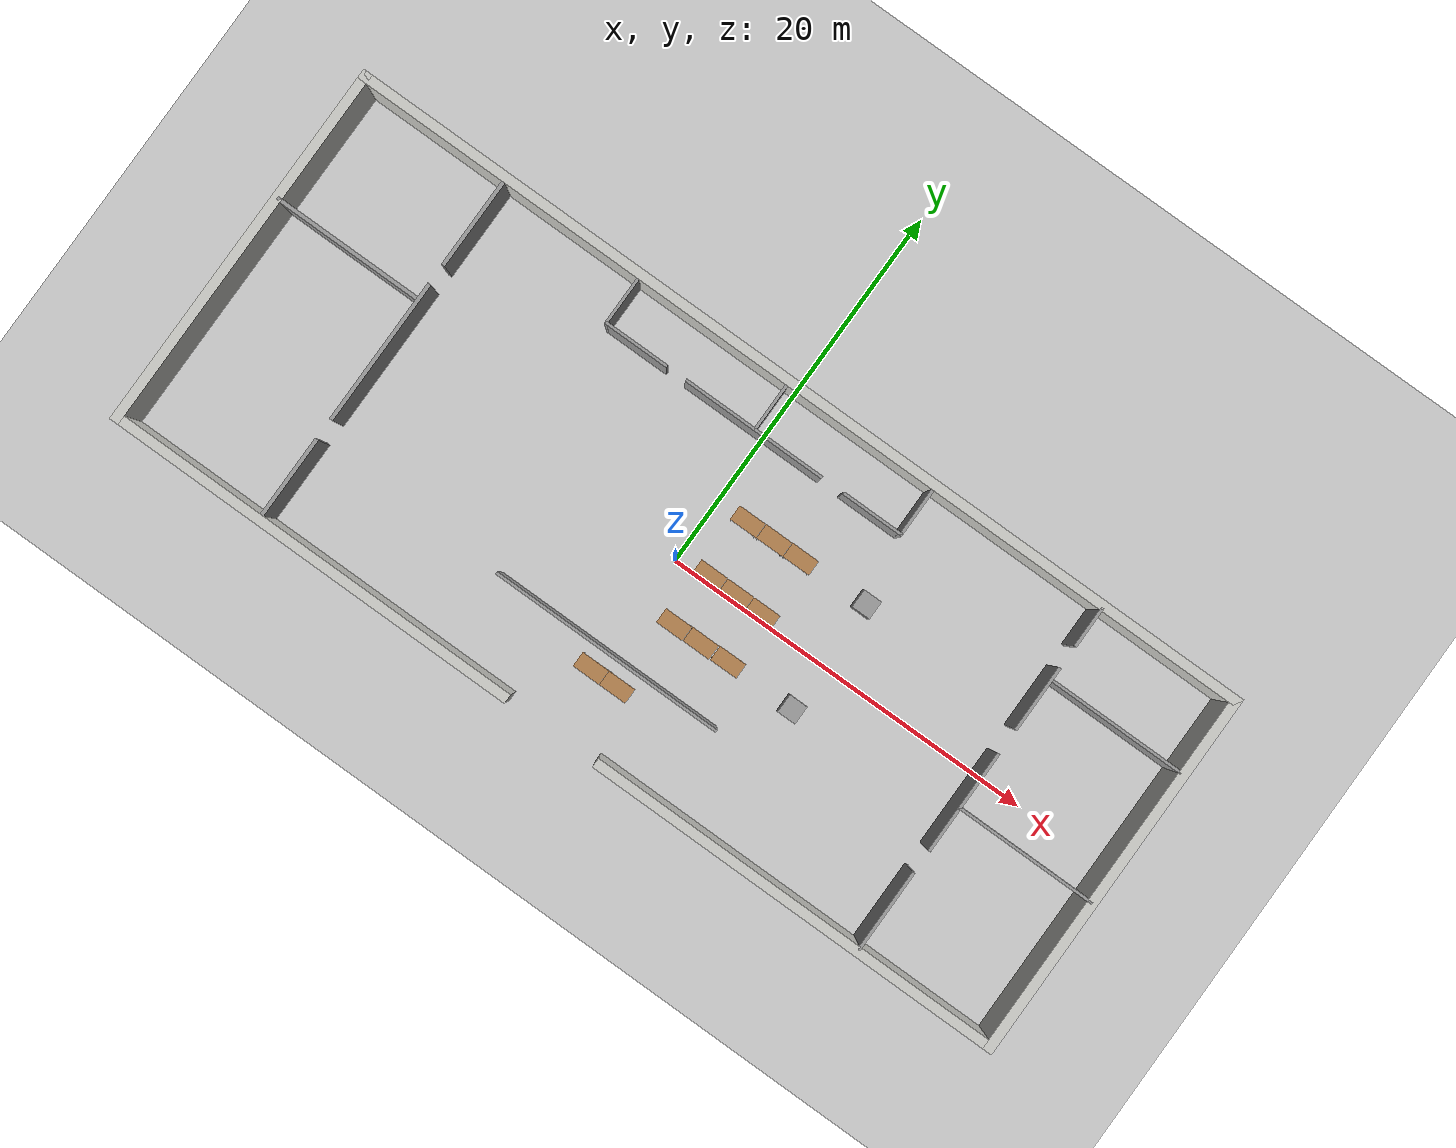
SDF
<sdf version="1.6">
 <world name="default">
  <model name="ground_plane">
   <static>1</static>
   <link name="link">
    <collision name="collision">
     <geometry><plane><normal>0 0 1</normal><size>100 100</size></plane></geometry>
     <surface><friction><ode><mu>100</mu><mu2>50</mu2></ode></friction></surface>
    </collision>
    <visual name="visual">
     <cast_shadows>0</cast_shadows>
     <geometry><plane><normal>0 0 1</normal><size>100 100</size></plane></geometry>
     <material>
      <script><uri>file://media/materials/scripts/gazebo.material</uri><name>Gazebo/Grey</name></script>
     </material>
    </visual>
   </link>
  </model>
  <model name="indemind_office">
   <pose>-0.031352 0.007006 0 0 -0 0</pose>
   <link name="Wall_1">
    <collision name="Wall_1_Collision">
     <geometry><box><size>20 0.5 2.5</size></box></geometry>
     <pose>0 0 1.25 0 -0 0</pose>
    </collision>
    <visual name="Wall_1_Visual">
     <pose>0 0 1.25 0 -0 0</pose>
     <geometry><box><size>20 0.5 2.5</size></box></geometry>
     <material>
      <script><uri>file://media/materials/scripts/gazebo.material</uri><name>Gazebo/CeilingTiled</name></script>
      <ambient>1 1 1 1</ambient>
     </material>
     <meta><layer>0</layer></meta>
    </visual>
    <pose>-24.75 -0 0 0 -0 -1.5708</pose>
   </link>
   <link name="Wall_11">
    <collision name="Wall_11_Collision">
     <geometry><box><size>20 0.5 2.5</size></box></geometry>
     <pose>0 0 1.25 0 -0 0</pose>
    </collision>
    <visual name="Wall_11_Visual">
     <pose>0 0 1.25 0 -0 0</pose>
     <geometry><box><size>20 0.5 2.5</size></box></geometry>
     <material>
      <script><uri>file://media/materials/scripts/gazebo.material</uri><name>Gazebo/CeilingTiled</name></script>
      <ambient>1 1 1 1</ambient>
     </material>
     <meta><layer>0</layer></meta>
    </visual>
    <pose>24.75 -0 0 0 -0 -1.5708</pose>
   </link>
   <link name="Wall_13">
    <collision name="Wall_13_Collision">
     <geometry><box><size>4.80017 0.2 2.5</size></box></geometry>
     <pose>0 0 1.25 0 -0 0</pose>
    </collision>
    <visual name="Wall_13_Visual">
     <pose>0 0 1.25 0 -0 0</pose>
     <geometry><box><size>4.80017 0.2 2.5</size></box></geometry>
     <material>
      <script><uri>file://media/materials/scripts/gazebo.material</uri><name>Gazebo/Grey</name></script>
      <ambient>1 1 1 1</ambient>
     </material>
     <meta><layer>0</layer></meta>
    </visual>
    <pose>-16.658 7.127 0 0 -0 -1.5708</pose>
   </link>
   <link name="Wall_15">
    <collision name="Wall_15_Collision">
     <geometry><box><size>7.75 0.2 2.5</size></box></geometry>
     <pose>0 0 1.25 0 -0 0</pose>
    </collision>
    <visual name="Wall_15_Visual">
     <pose>0 0 1.25 0 -0 0</pose>
     <geometry><box><size>7.75 0.2 2.5</size></box></geometry>
     <material>
      <script><uri>file://media/materials/scripts/gazebo.material</uri><name>Gazebo/Grey</name></script>
      <ambient>1 1 1 1</ambient>
     </material>
     <meta><layer>0</layer></meta>
    </visual>
    <pose>-16.658 -0.198 0 0 -0 -1.5708</pose>
   </link>
   <link name="Wall_17">
    <collision name="Wall_17_Collision">
     <geometry><box><size>4.5 0.2 2.5</size></box></geometry>
     <pose>0 0 1.25 0 -0 0</pose>
    </collision>
    <visual name="Wall_17_Visual">
     <pose>0 0 1.25 0 -0 0</pose>
     <geometry><box><size>4.5 0.2 2.5</size></box></geometry>
     <material>
      <script><uri>file://media/materials/scripts/gazebo.material</uri><name>Gazebo/Grey</name></script>
      <ambient>1 1 1 1</ambient>
     </material>
     <meta><layer>0</layer></meta>
    </visual>
    <pose>-16.658 -7.423 0 0 -0 -1.5708</pose>
   </link>
   <link name="Wall_19">
    <collision name="Wall_19_Collision">
     <geometry><box><size>8.04985 0.2 2.5</size></box></geometry>
     <pose>0 0 1.25 0 -0 0</pose>
    </collision>
    <visual name="Wall_19_Visual">
     <pose>0 0 1.25 0 -0 0</pose>
     <geometry><box><size>8.04985 0.2 2.5</size></box></geometry>
     <material>
      <script><uri>file://media/materials/scripts/gazebo.material</uri><name>Gazebo/Grey</name></script>
      <ambient>1 1 1 1</ambient>
     </material>
     <meta><layer>0</layer></meta>
    </visual>
    <pose>-20.703 2.792 0 0 -0 0</pose>
   </link>
   <link name="Wall_21">
    <collision name="Wall_21_Collision">
     <geometry><box><size>2.25 0.15 2.5</size></box></geometry>
     <pose>0 0 1.25 0 -0 0</pose>
    </collision>
    <visual name="Wall_21_Visual">
     <pose>0 0 1.25 0 -0 0</pose>
     <geometry><box><size>2.25 0.15 2.5</size></box></geometry>
     <material>
      <script><uri>file://media/materials/scripts/gazebo.material</uri><name>Gazebo/Grey</name></script>
      <ambient>1 1 1 1</ambient>
     </material>
     <meta><layer>0</layer></meta>
    </visual>
    <pose>17.2839 8.57905 0 0 -0 -1.57072</pose>
   </link>
   <link name="Wall_23">
    <collision name="Wall_23_Collision">
     <geometry><box><size>3.5 0.15 2.5</size></box></geometry>
     <pose>0 0 1.25 0 -0 0</pose>
    </collision>
    <visual name="Wall_23_Visual">
     <pose>0 0 1.25 0 -0 0</pose>
     <geometry><box><size>3.5 0.15 2.5</size></box></geometry>
     <material>
      <script><uri>file://media/materials/scripts/gazebo.material</uri><name>Gazebo/Grey</name></script>
      <ambient>1 1 1 1</ambient>
     </material>
     <meta><layer>0</layer></meta>
    </visual>
    <pose>17.2838 4.5041 0 0 -0 -1.5708</pose>
   </link>
   <link name="Wall_25">
    <collision name="Wall_25_Collision">
     <geometry><box><size>5.5 0.15 2.5</size></box></geometry>
     <pose>0 0 1.25 0 -0 0</pose>
    </collision>
    <visual name="Wall_25_Visual">
     <pose>0 0 1.25 0 -0 0</pose>
     <geometry><box><size>5.5 0.15 2.5</size></box></geometry>
     <material>
      <script><uri>file://media/materials/scripts/gazebo.material</uri><name>Gazebo/Grey</name></script>
      <ambient>1 1 1 1</ambient>
     </material>
     <meta><layer>0</layer></meta>
    </visual>
    <pose>17.2838 -1.3459 0 0 -0 -1.5708</pose>
   </link>
   <link name="Wall_27">
    <collision name="Wall_27_Collision">
     <geometry><box><size>4.35 0.15 2.5</size></box></geometry>
     <pose>0 0 1.25 0 -0 0</pose>
    </collision>
    <visual name="Wall_27_Visual">
     <pose>0 0 1.25 0 -0 0</pose>
     <geometry><box><size>4.35 0.15 2.5</size></box></geometry>
     <material>
      <script><uri>file://media/materials/scripts/gazebo.material</uri><name>Gazebo/Grey</name></script>
      <ambient>1 1 1 1</ambient>
     </material>
     <meta><layer>0</layer></meta>
    </visual>
    <pose>17.2838 -7.4709 0 0 -0 -1.5708</pose>
   </link>
   <link name="Wall_29">
    <collision name="Wall_29_Collision">
     <geometry><box><size>7.5 0.15 2.5</size></box></geometry>
     <pose>0 0 1.25 0 -0 0</pose>
    </collision>
    <visual name="Wall_29_Visual">
     <pose>0 0 1.25 0 -0 0</pose>
     <geometry><box><size>7.5 0.15 2.5</size></box></geometry>
     <material>
      <script><uri>file://media/materials/scripts/gazebo.material</uri><name>Gazebo/Grey</name></script>
      <ambient>1 1 1 1</ambient>
     </material>
     <meta><layer>0</layer></meta>
    </visual>
    <pose>20.9993 5.58355 0 0 -0 0</pose>
   </link>
   <link name="Wall_3">
    <collision name="Wall_3_Collision">
     <geometry><box><size>50 0.5 2.5</size></box></geometry>
     <pose>0 0 1.25 0 -0 0</pose>
    </collision>
    <visual name="Wall_3_Visual">
     <pose>0 0 1.25 0 -0 0</pose>
     <geometry><box><size>50 0.5 2.5</size></box></geometry>
     <material>
      <script><uri>file://media/materials/scripts/gazebo.material</uri><name>Gazebo/CeilingTiled</name></script>
      <ambient>1 1 1 1</ambient>
     </material>
     <meta><layer>0</layer></meta>
    </visual>
    <pose>-1e-06 9.75 0 0 -0 0</pose>
   </link>
   <link name="Wall_31">
    <collision name="Wall_31_Collision">
     <geometry><box><size>7.5 0.15 2.5</size></box></geometry>
     <pose>0 0 1.25 0 -0 0</pose>
    </collision>
    <visual name="Wall_31_Visual">
     <pose>0 0 1.25 0 -0 0</pose>
     <geometry><box><size>7.5 0.15 2.5</size></box></geometry>
     <material>
      <script><uri>file://media/materials/scripts/gazebo.material</uri><name>Gazebo/Grey</name></script>
      <ambient>1 1 1 1</ambient>
     </material>
     <meta><layer>0</layer></meta>
    </visual>
    <pose>20.9993 -1.658 0 0 -0 0</pose>
   </link>
   <link name="Wall_34">
    <collision name="Wall_34_Collision">
     <geometry><box><size>2.75032 0.15 2.5</size></box></geometry>
     <pose>0 0 1.25 0 -0 0</pose>
    </collision>
    <visual name="Wall_34_Visual">
     <pose>0 0 1.25 0 -0 0</pose>
     <geometry><box><size>2.75032 0.15 2.5</size></box></geometry>
     <material>
      <script><uri>file://media/materials/scripts/gazebo.material</uri><name>Gazebo/Grey</name></script>
      <ambient>1 1 1 1</ambient>
     </material>
     <meta><layer>0</layer></meta>
    </visual>
    <pose>-8.97184 8.28865 0 0 -0 -1.5708</pose>
   </link>
   <link name="Wall_35">
    <collision name="Wall_35_Collision">
     <geometry><box><size>3.5 0.15 2.5</size></box></geometry>
     <pose>0 0 1.25 0 -0 0</pose>
    </collision>
    <visual name="Wall_35_Visual">
     <pose>0 0 1.25 0 -0 0</pose>
     <geometry><box><size>3.5 0.15 2.5</size></box></geometry>
     <material>
      <script><uri>file://media/materials/scripts/gazebo.material</uri><name>Gazebo/Grey</name></script>
      <ambient>1 1 1 1</ambient>
     </material>
     <meta><layer>0</layer></meta>
    </visual>
    <pose>-7.25638 6.98865 0 0 -0 0</pose>
   </link>
   <link name="Wall_37">
    <collision name="Wall_37_Collision">
     <geometry><box><size>7.75 0.15 2.5</size></box></geometry>
     <pose>0 0 1.25 0 -0 0</pose>
    </collision>
    <visual name="Wall_37_Visual">
     <pose>0 0 1.25 0 -0 0</pose>
     <geometry><box><size>7.75 0.15 2.5</size></box></geometry>
     <material>
      <script><uri>file://media/materials/scripts/gazebo.material</uri><name>Gazebo/Grey</name></script>
      <ambient>1 1 1 1</ambient>
     </material>
     <meta><layer>0</layer></meta>
    </visual>
    <pose>-0.572001 6.989 0 0 -0 0</pose>
   </link>
   <link name="Wall_39">
    <collision name="Wall_39_Collision">
     <geometry><box><size>3.35 0.15 2.5</size></box></geometry>
     <pose>0 0 1.25 0 -0 0</pose>
    </collision>
    <visual name="Wall_39_Visual">
     <pose>0 0 1.25 0 -0 0</pose>
     <geometry><box><size>3.35 0.15 2.5</size></box></geometry>
     <material>
      <script><uri>file://media/materials/scripts/gazebo.material</uri><name>Gazebo/Grey</name></script>
      <ambient>1 1 1 1</ambient>
     </material>
     <meta><layer>0</layer></meta>
    </visual>
    <pose>6.17808 6.98882 0 0 -0 -0.00011</pose>
   </link>
   <link name="Wall_40">
    <collision name="Wall_40_Collision">
     <geometry><box><size>2.75 0.15 2.5</size></box></geometry>
     <pose>0 0 1.25 0 -0 0</pose>
    </collision>
    <visual name="Wall_40_Visual">
     <pose>0 0 1.25 0 -0 0</pose>
     <geometry><box><size>2.75 0.15 2.5</size></box></geometry>
     <material>
      <script><uri>file://media/materials/scripts/gazebo.material</uri><name>Gazebo/Grey</name></script>
      <ambient>1 1 1 1</ambient>
     </material>
     <meta><layer>0</layer></meta>
    </visual>
    <pose>7.77816 8.28865 0 0 -0 1.5708</pose>
   </link>
   <link name="Wall_42">
    <collision name="Wall_42_Collision">
     <geometry><box><size>2.75 0.15 2.5</size></box></geometry>
     <pose>0 0 1.25 0 -0 0</pose>
    </collision>
    <visual name="Wall_42_Visual">
     <pose>0 0 1.25 0 -0 0</pose>
     <geometry><box><size>2.75 0.15 2.5</size></box></geometry>
     <material>
      <script><uri>file://media/materials/scripts/gazebo.material</uri><name>Gazebo/Grey</name></script>
      <ambient>1 1 1 1</ambient>
     </material>
     <meta><layer>0</layer></meta>
    </visual>
    <pose>-0.516625 8.36956 0 0 -0 -1.5708</pose>
   </link>
   <link name="Wall_44">
    <collision name="Wall_44_Collision">
     <geometry><box><size>12.5 0.15 2.5</size></box></geometry>
     <pose>0 0 1.25 0 -0 0</pose>
    </collision>
    <visual name="Wall_44_Visual">
     <pose>0 0 1.25 0 -0 0</pose>
     <geometry><box><size>12.5 0.15 2.5</size></box></geometry>
     <material>
      <script><uri>file://media/materials/scripts/gazebo.material</uri><name>Gazebo/Grey</name></script>
      <ambient>1 1 1 1</ambient>
     </material>
     <meta><layer>0</layer></meta>
    </visual>
    <pose>-0.086317 -5.33946 0 0 -0 0</pose>
   </link>
   <link name="Wall_7">
    <collision name="Wall_7_Collision">
     <geometry><box><size>22.5 0.5 2.5</size></box></geometry>
     <pose>0 0 1.25 0 -0 0</pose>
    </collision>
    <visual name="Wall_7_Visual">
     <pose>0 0 1.25 0 -0 0</pose>
     <geometry><box><size>22.5 0.5 2.5</size></box></geometry>
     <material>
      <script><uri>file://media/materials/scripts/gazebo.material</uri><name>Gazebo/CeilingTiled</name></script>
      <ambient>1 1 1 1</ambient>
     </material>
     <meta><layer>0</layer></meta>
    </visual>
    <pose>-13.75 -9.75 0 0 -0 0</pose>
   </link>
   <link name="Wall_9">
    <collision name="Wall_9_Collision">
     <geometry><box><size>22.5 0.5 2.5</size></box></geometry>
     <pose>0 0 1.25 0 -0 0</pose>
    </collision>
    <visual name="Wall_9_Visual">
     <pose>0 0 1.25 0 -0 0</pose>
     <geometry><box><size>22.5 0.5 2.5</size></box></geometry>
     <material>
      <script><uri>file://media/materials/scripts/gazebo.material</uri><name>Gazebo/CeilingTiled</name></script>
      <ambient>1 1 1 1</ambient>
     </material>
     <meta><layer>0</layer></meta>
    </visual>
    <pose>13.7296 -9.74954 0 0 -0 0</pose>
   </link>
   <static>1</static>
  </model>
  <model name="table_0">
   <static>1</static>
   <link name="link">
    <collision name="surface">
     <pose>0 0 1 0 -0 0</pose>
     <geometry><box><size>1.5 0.8 0.03</size></box></geometry>
     <surface><friction><ode><mu>0.6</mu><mu2>0.6</mu2></ode></friction></surface>
    </collision>
    <visual name="visual1">
     <pose>0 0 1 0 -0 0</pose>
     <geometry><box><size>1.5 0.8 0.03</size></box></geometry>
     <material>
      <script><uri>file://media/materials/scripts/gazebo.material</uri><name>Gazebo/Wood</name></script>
     </material>
    </visual>
    <collision name="front_left_leg">
     <pose>0.68 0.38 0.5 0 -0 0</pose>
     <geometry><cylinder><radius>0.02</radius><length>1</length></cylinder></geometry>
    </collision>
    <visual name="front_left_leg">
     <pose>0.68 0.38 0.5 0 -0 0</pose>
     <geometry><cylinder><radius>0.02</radius><length>1</length></cylinder></geometry>
     <material>
      <script><uri>file://media/materials/scripts/gazebo.material</uri><name>Gazebo/Grey</name></script>
     </material>
    </visual>
    <collision name="front_right_leg">
     <pose>0.68 -0.38 0.5 0 -0 0</pose>
     <geometry><cylinder><radius>0.02</radius><length>1</length></cylinder></geometry>
    </collision>
    <visual name="front_right_leg">
     <pose>0.68 -0.38 0.5 0 -0 0</pose>
     <geometry><cylinder><radius>0.02</radius><length>1</length></cylinder></geometry>
     <material>
      <script><uri>file://media/materials/scripts/gazebo.material</uri><name>Gazebo/Grey</name></script>
     </material>
    </visual>
    <collision name="back_right_leg">
     <pose>-0.68 -0.38 0.5 0 -0 0</pose>
     <geometry><cylinder><radius>0.02</radius><length>1</length></cylinder></geometry>
    </collision>
    <visual name="back_right_leg">
     <pose>-0.68 -0.38 0.5 0 -0 0</pose>
     <geometry><cylinder><radius>0.02</radius><length>1</length></cylinder></geometry>
     <material>
      <script><uri>file://media/materials/scripts/gazebo.material</uri><name>Gazebo/Grey</name></script>
     </material>
    </visual>
    <collision name="back_left_leg">
     <pose>-0.68 0.38 0.5 0 -0 0</pose>
     <geometry><cylinder><radius>0.02</radius><length>1</length></cylinder></geometry>
    </collision>
    <visual name="back_left_leg">
     <pose>-0.68 0.38 0.5 0 -0 0</pose>
     <geometry><cylinder><radius>0.02</radius><length>1</length></cylinder></geometry>
     <material>
      <script><uri>file://media/materials/scripts/gazebo.material</uri><name>Gazebo/Grey</name></script>
     </material>
    </visual>
   </link>
   <pose>-0.266949 -6.45533 0 0 -0 0</pose>
  </model>
  <model name="table_1">
   <static>1</static>
   <link name="link">
    <collision name="surface">
     <pose>0 0 1 0 -0 0</pose>
     <geometry><box><size>1.5 0.8 0.03</size></box></geometry>
     <surface><friction><ode><mu>0.6</mu><mu2>0.6</mu2></ode></friction></surface>
    </collision>
    <visual name="visual1">
     <pose>0 0 1 0 -0 0</pose>
     <geometry><box><size>1.5 0.8 0.03</size></box></geometry>
     <material>
      <script><uri>file://media/materials/scripts/gazebo.material</uri><name>Gazebo/Wood</name></script>
     </material>
    </visual>
    <collision name="front_left_leg">
     <pose>0.68 0.38 0.5 0 -0 0</pose>
     <geometry><cylinder><radius>0.02</radius><length>1</length></cylinder></geometry>
    </collision>
    <visual name="front_left_leg">
     <pose>0.68 0.38 0.5 0 -0 0</pose>
     <geometry><cylinder><radius>0.02</radius><length>1</length></cylinder></geometry>
     <material>
      <script><uri>file://media/materials/scripts/gazebo.material</uri><name>Gazebo/Grey</name></script>
     </material>
    </visual>
    <collision name="front_right_leg">
     <pose>0.68 -0.38 0.5 0 -0 0</pose>
     <geometry><cylinder><radius>0.02</radius><length>1</length></cylinder></geometry>
    </collision>
    <visual name="front_right_leg">
     <pose>0.68 -0.38 0.5 0 -0 0</pose>
     <geometry><cylinder><radius>0.02</radius><length>1</length></cylinder></geometry>
     <material>
      <script><uri>file://media/materials/scripts/gazebo.material</uri><name>Gazebo/Grey</name></script>
     </material>
    </visual>
    <collision name="back_right_leg">
     <pose>-0.68 -0.38 0.5 0 -0 0</pose>
     <geometry><cylinder><radius>0.02</radius><length>1</length></cylinder></geometry>
    </collision>
    <visual name="back_right_leg">
     <pose>-0.68 -0.38 0.5 0 -0 0</pose>
     <geometry><cylinder><radius>0.02</radius><length>1</length></cylinder></geometry>
     <material>
      <script><uri>file://media/materials/scripts/gazebo.material</uri><name>Gazebo/Grey</name></script>
     </material>
    </visual>
    <collision name="back_left_leg">
     <pose>-0.68 0.38 0.5 0 -0 0</pose>
     <geometry><cylinder><radius>0.02</radius><length>1</length></cylinder></geometry>
    </collision>
    <visual name="back_left_leg">
     <pose>-0.68 0.38 0.5 0 -0 0</pose>
     <geometry><cylinder><radius>0.02</radius><length>1</length></cylinder></geometry>
     <material>
      <script><uri>file://media/materials/scripts/gazebo.material</uri><name>Gazebo/Grey</name></script>
     </material>
    </visual>
   </link>
   <pose>1.24514 -6.45321 0 0 -0 0</pose>
  </model>
  <model name="unit_box_1">
   <pose>8.49375 3.54195 0.499995 -1e-05 -0 0</pose>
   <link name="link">
    <inertial>
     <mass>1</mass>
     <inertia>
      <ixx>0.166667</ixx>
      <ixy>0</ixy>
      <ixz>0</ixz>
      <iyy>0.166667</iyy>
      <iyz>0</iyz>
      <izz>0.166667</izz>
     </inertia>
    </inertial>
    <collision name="collision"><geometry><box><size>1 1 1</size></box></geometry></collision>
    <visual name="visual">
     <geometry><box><size>1 1 1</size></box></geometry>
     <material>
      <script><name>Gazebo/Grey</name><uri>file://media/materials/scripts/gazebo.material</uri></script>
     </material>
    </visual>
   </link>
  </model>
  <model name="unit_box_2">
   <pose>8.52634 -2.49408 0.5 0 -0 0</pose>
   <link name="link">
    <inertial>
     <mass>1</mass>
     <inertia>
      <ixx>0.166667</ixx>
      <ixy>0</ixy>
      <ixz>0</ixz>
      <iyy>0.166667</iyy>
      <iyz>0</iyz>
      <izz>0.166667</izz>
     </inertia>
    </inertial>
    <collision name="collision"><geometry><box><size>1 1 1</size></box></geometry></collision>
    <visual name="visual">
     <geometry><box><size>1 1 1</size></box></geometry>
     <material>
      <script><name>Gazebo/Grey</name><uri>file://media/materials/scripts/gazebo.material</uri></script>
     </material>
    </visual>
   </link>
  </model>
  <model name="table_6">
   <static>1</static>
   <link name="link">
    <collision name="surface">
     <pose>0 0 1 0 -0 0</pose>
     <geometry><box><size>1.5 0.8 0.03</size></box></geometry>
     <surface><friction><ode><mu>0.6</mu><mu2>0.6</mu2></ode></friction></surface>
    </collision>
    <visual name="visual1">
     <pose>0 0 1 0 -0 0</pose>
     <geometry><box><size>1.5 0.8 0.03</size></box></geometry>
     <material>
      <script><uri>file://media/materials/scripts/gazebo.material</uri><name>Gazebo/Wood</name></script>
     </material>
    </visual>
    <collision name="front_left_leg">
     <pose>0.68 0.38 0.5 0 -0 0</pose>
     <geometry><cylinder><radius>0.02</radius><length>1</length></cylinder></geometry>
    </collision>
    <visual name="front_left_leg">
     <pose>0.68 0.38 0.5 0 -0 0</pose>
     <geometry><cylinder><radius>0.02</radius><length>1</length></cylinder></geometry>
     <material>
      <script><uri>file://media/materials/scripts/gazebo.material</uri><name>Gazebo/Grey</name></script>
     </material>
    </visual>
    <collision name="front_right_leg">
     <pose>0.68 -0.38 0.5 0 -0 0</pose>
     <geometry><cylinder><radius>0.02</radius><length>1</length></cylinder></geometry>
    </collision>
    <visual name="front_right_leg">
     <pose>0.68 -0.38 0.5 0 -0 0</pose>
     <geometry><cylinder><radius>0.02</radius><length>1</length></cylinder></geometry>
     <material>
      <script><uri>file://media/materials/scripts/gazebo.material</uri><name>Gazebo/Grey</name></script>
     </material>
    </visual>
    <collision name="back_right_leg">
     <pose>-0.68 -0.38 0.5 0 -0 0</pose>
     <geometry><cylinder><radius>0.02</radius><length>1</length></cylinder></geometry>
    </collision>
    <visual name="back_right_leg">
     <pose>-0.68 -0.38 0.5 0 -0 0</pose>
     <geometry><cylinder><radius>0.02</radius><length>1</length></cylinder></geometry>
     <material>
      <script><uri>file://media/materials/scripts/gazebo.material</uri><name>Gazebo/Grey</name></script>
     </material>
    </visual>
    <collision name="back_left_leg">
     <pose>-0.68 0.38 0.5 0 -0 0</pose>
     <geometry><cylinder><radius>0.02</radius><length>1</length></cylinder></geometry>
    </collision>
    <visual name="back_left_leg">
     <pose>-0.68 0.38 0.5 0 -0 0</pose>
     <geometry><cylinder><radius>0.02</radius><length>1</length></cylinder></geometry>
     <material>
      <script><uri>file://media/materials/scripts/gazebo.material</uri><name>Gazebo/Grey</name></script>
     </material>
    </visual>
   </link>
   <pose>1.69262 3.4334 0 0 -0 0</pose>
  </model>
  <model name="table_7">
   <static>1</static>
   <link name="link">
    <collision name="surface">
     <pose>0 0 1 0 -0 0</pose>
     <geometry><box><size>1.5 0.8 0.03</size></box></geometry>
     <surface><friction><ode><mu>0.6</mu><mu2>0.6</mu2></ode></friction></surface>
    </collision>
    <visual name="visual1">
     <pose>0 0 1 0 -0 0</pose>
     <geometry><box><size>1.5 0.8 0.03</size></box></geometry>
     <material>
      <script><uri>file://media/materials/scripts/gazebo.material</uri><name>Gazebo/Wood</name></script>
     </material>
    </visual>
    <collision name="front_left_leg">
     <pose>0.68 0.38 0.5 0 -0 0</pose>
     <geometry><cylinder><radius>0.02</radius><length>1</length></cylinder></geometry>
    </collision>
    <visual name="front_left_leg">
     <pose>0.68 0.38 0.5 0 -0 0</pose>
     <geometry><cylinder><radius>0.02</radius><length>1</length></cylinder></geometry>
     <material>
      <script><uri>file://media/materials/scripts/gazebo.material</uri><name>Gazebo/Grey</name></script>
     </material>
    </visual>
    <collision name="front_right_leg">
     <pose>0.68 -0.38 0.5 0 -0 0</pose>
     <geometry><cylinder><radius>0.02</radius><length>1</length></cylinder></geometry>
    </collision>
    <visual name="front_right_leg">
     <pose>0.68 -0.38 0.5 0 -0 0</pose>
     <geometry><cylinder><radius>0.02</radius><length>1</length></cylinder></geometry>
     <material>
      <script><uri>file://media/materials/scripts/gazebo.material</uri><name>Gazebo/Grey</name></script>
     </material>
    </visual>
    <collision name="back_right_leg">
     <pose>-0.68 -0.38 0.5 0 -0 0</pose>
     <geometry><cylinder><radius>0.02</radius><length>1</length></cylinder></geometry>
    </collision>
    <visual name="back_right_leg">
     <pose>-0.68 -0.38 0.5 0 -0 0</pose>
     <geometry><cylinder><radius>0.02</radius><length>1</length></cylinder></geometry>
     <material>
      <script><uri>file://media/materials/scripts/gazebo.material</uri><name>Gazebo/Grey</name></script>
     </material>
    </visual>
    <collision name="back_left_leg">
     <pose>-0.68 0.38 0.5 0 -0 0</pose>
     <geometry><cylinder><radius>0.02</radius><length>1</length></cylinder></geometry>
    </collision>
    <visual name="back_left_leg">
     <pose>-0.68 0.38 0.5 0 -0 0</pose>
     <geometry><cylinder><radius>0.02</radius><length>1</length></cylinder></geometry>
     <material>
      <script><uri>file://media/materials/scripts/gazebo.material</uri><name>Gazebo/Grey</name></script>
     </material>
    </visual>
   </link>
   <pose>3.21466 3.44369 0 0 -0 0</pose>
  </model>
  <model name="table_8">
   <static>1</static>
   <link name="link">
    <collision name="surface">
     <pose>0 0 1 0 -0 0</pose>
     <geometry><box><size>1.5 0.8 0.03</size></box></geometry>
     <surface><friction><ode><mu>0.6</mu><mu2>0.6</mu2></ode></friction></surface>
    </collision>
    <visual name="visual1">
     <pose>0 0 1 0 -0 0</pose>
     <geometry><box><size>1.5 0.8 0.03</size></box></geometry>
     <material>
      <script><uri>file://media/materials/scripts/gazebo.material</uri><name>Gazebo/Wood</name></script>
     </material>
    </visual>
    <collision name="front_left_leg">
     <pose>0.68 0.38 0.5 0 -0 0</pose>
     <geometry><cylinder><radius>0.02</radius><length>1</length></cylinder></geometry>
    </collision>
    <visual name="front_left_leg">
     <pose>0.68 0.38 0.5 0 -0 0</pose>
     <geometry><cylinder><radius>0.02</radius><length>1</length></cylinder></geometry>
     <material>
      <script><uri>file://media/materials/scripts/gazebo.material</uri><name>Gazebo/Grey</name></script>
     </material>
    </visual>
    <collision name="front_right_leg">
     <pose>0.68 -0.38 0.5 0 -0 0</pose>
     <geometry><cylinder><radius>0.02</radius><length>1</length></cylinder></geometry>
    </collision>
    <visual name="front_right_leg">
     <pose>0.68 -0.38 0.5 0 -0 0</pose>
     <geometry><cylinder><radius>0.02</radius><length>1</length></cylinder></geometry>
     <material>
      <script><uri>file://media/materials/scripts/gazebo.material</uri><name>Gazebo/Grey</name></script>
     </material>
    </visual>
    <collision name="back_right_leg">
     <pose>-0.68 -0.38 0.5 0 -0 0</pose>
     <geometry><cylinder><radius>0.02</radius><length>1</length></cylinder></geometry>
    </collision>
    <visual name="back_right_leg">
     <pose>-0.68 -0.38 0.5 0 -0 0</pose>
     <geometry><cylinder><radius>0.02</radius><length>1</length></cylinder></geometry>
     <material>
      <script><uri>file://media/materials/scripts/gazebo.material</uri><name>Gazebo/Grey</name></script>
     </material>
    </visual>
    <collision name="back_left_leg">
     <pose>-0.68 0.38 0.5 0 -0 0</pose>
     <geometry><cylinder><radius>0.02</radius><length>1</length></cylinder></geometry>
    </collision>
    <visual name="back_left_leg">
     <pose>-0.68 0.38 0.5 0 -0 0</pose>
     <geometry><cylinder><radius>0.02</radius><length>1</length></cylinder></geometry>
     <material>
      <script><uri>file://media/materials/scripts/gazebo.material</uri><name>Gazebo/Grey</name></script>
     </material>
    </visual>
   </link>
   <pose>4.7359 3.45863 0 0 -0 0</pose>
  </model>
  <model name="table_13">
   <static>1</static>
   <link name="link">
    <collision name="surface">
     <pose>0 0 1 0 -0 0</pose>
     <geometry><box><size>1.5 0.8 0.03</size></box></geometry>
     <surface><friction><ode><mu>0.6</mu><mu2>0.6</mu2></ode></friction></surface>
    </collision>
    <visual name="visual1">
     <pose>0 0 1 0 -0 0</pose>
     <geometry><box><size>1.5 0.8 0.03</size></box></geometry>
     <material>
      <script><uri>file://media/materials/scripts/gazebo.material</uri><name>Gazebo/Wood</name></script>
     </material>
    </visual>
    <collision name="front_left_leg">
     <pose>0.68 0.38 0.5 0 -0 0</pose>
     <geometry><cylinder><radius>0.02</radius><length>1</length></cylinder></geometry>
    </collision>
    <visual name="front_left_leg">
     <pose>0.68 0.38 0.5 0 -0 0</pose>
     <geometry><cylinder><radius>0.02</radius><length>1</length></cylinder></geometry>
     <material>
      <script><uri>file://media/materials/scripts/gazebo.material</uri><name>Gazebo/Grey</name></script>
     </material>
    </visual>
    <collision name="front_right_leg">
     <pose>0.68 -0.38 0.5 0 -0 0</pose>
     <geometry><cylinder><radius>0.02</radius><length>1</length></cylinder></geometry>
    </collision>
    <visual name="front_right_leg">
     <pose>0.68 -0.38 0.5 0 -0 0</pose>
     <geometry><cylinder><radius>0.02</radius><length>1</length></cylinder></geometry>
     <material>
      <script><uri>file://media/materials/scripts/gazebo.material</uri><name>Gazebo/Grey</name></script>
     </material>
    </visual>
    <collision name="back_right_leg">
     <pose>-0.68 -0.38 0.5 0 -0 0</pose>
     <geometry><cylinder><radius>0.02</radius><length>1</length></cylinder></geometry>
    </collision>
    <visual name="back_right_leg">
     <pose>-0.68 -0.38 0.5 0 -0 0</pose>
     <geometry><cylinder><radius>0.02</radius><length>1</length></cylinder></geometry>
     <material>
      <script><uri>file://media/materials/scripts/gazebo.material</uri><name>Gazebo/Grey</name></script>
     </material>
    </visual>
    <collision name="back_left_leg">
     <pose>-0.68 0.38 0.5 0 -0 0</pose>
     <geometry><cylinder><radius>0.02</radius><length>1</length></cylinder></geometry>
    </collision>
    <visual name="back_left_leg">
     <pose>-0.68 0.38 0.5 0 -0 0</pose>
     <geometry><cylinder><radius>0.02</radius><length>1</length></cylinder></geometry>
     <material>
      <script><uri>file://media/materials/scripts/gazebo.material</uri><name>Gazebo/Grey</name></script>
     </material>
    </visual>
   </link>
   <pose>1.72317 0.325009 0 0 -0 0</pose>
  </model>
  <model name="table_5">
   <static>1</static>
   <link name="link">
    <collision name="surface">
     <pose>0 0 1 0 -0 0</pose>
     <geometry><box><size>1.5 0.8 0.03</size></box></geometry>
     <surface><friction><ode><mu>0.6</mu><mu2>0.6</mu2></ode></friction></surface>
    </collision>
    <visual name="visual1">
     <pose>0 0 1 0 -0 0</pose>
     <geometry><box><size>1.5 0.8 0.03</size></box></geometry>
     <material>
      <script><uri>file://media/materials/scripts/gazebo.material</uri><name>Gazebo/Wood</name></script>
     </material>
    </visual>
    <collision name="front_left_leg">
     <pose>0.68 0.38 0.5 0 -0 0</pose>
     <geometry><cylinder><radius>0.02</radius><length>1</length></cylinder></geometry>
    </collision>
    <visual name="front_left_leg">
     <pose>0.68 0.38 0.5 0 -0 0</pose>
     <geometry><cylinder><radius>0.02</radius><length>1</length></cylinder></geometry>
     <material>
      <script><uri>file://media/materials/scripts/gazebo.material</uri><name>Gazebo/Grey</name></script>
     </material>
    </visual>
    <collision name="front_right_leg">
     <pose>0.68 -0.38 0.5 0 -0 0</pose>
     <geometry><cylinder><radius>0.02</radius><length>1</length></cylinder></geometry>
    </collision>
    <visual name="front_right_leg">
     <pose>0.68 -0.38 0.5 0 -0 0</pose>
     <geometry><cylinder><radius>0.02</radius><length>1</length></cylinder></geometry>
     <material>
      <script><uri>file://media/materials/scripts/gazebo.material</uri><name>Gazebo/Grey</name></script>
     </material>
    </visual>
    <collision name="back_right_leg">
     <pose>-0.68 -0.38 0.5 0 -0 0</pose>
     <geometry><cylinder><radius>0.02</radius><length>1</length></cylinder></geometry>
    </collision>
    <visual name="back_right_leg">
     <pose>-0.68 -0.38 0.5 0 -0 0</pose>
     <geometry><cylinder><radius>0.02</radius><length>1</length></cylinder></geometry>
     <material>
      <script><uri>file://media/materials/scripts/gazebo.material</uri><name>Gazebo/Grey</name></script>
     </material>
    </visual>
    <collision name="back_left_leg">
     <pose>-0.68 0.38 0.5 0 -0 0</pose>
     <geometry><cylinder><radius>0.02</radius><length>1</length></cylinder></geometry>
    </collision>
    <visual name="back_left_leg">
     <pose>-0.68 0.38 0.5 0 -0 0</pose>
     <geometry><cylinder><radius>0.02</radius><length>1</length></cylinder></geometry>
     <material>
      <script><uri>file://media/materials/scripts/gazebo.material</uri><name>Gazebo/Grey</name></script>
     </material>
    </visual>
   </link>
   <pose>3.24589 0.320966 0 0 -0 0</pose>
  </model>
  <model name="table_12">
   <static>1</static>
   <link name="link">
    <collision name="surface">
     <pose>0 0 1 0 -0 0</pose>
     <geometry><box><size>1.5 0.8 0.03</size></box></geometry>
     <surface><friction><ode><mu>0.6</mu><mu2>0.6</mu2></ode></friction></surface>
    </collision>
    <visual name="visual1">
     <pose>0 0 1 0 -0 0</pose>
     <geometry><box><size>1.5 0.8 0.03</size></box></geometry>
     <material>
      <script><uri>file://media/materials/scripts/gazebo.material</uri><name>Gazebo/Wood</name></script>
     </material>
    </visual>
    <collision name="front_left_leg">
     <pose>0.68 0.38 0.5 0 -0 0</pose>
     <geometry><cylinder><radius>0.02</radius><length>1</length></cylinder></geometry>
    </collision>
    <visual name="front_left_leg">
     <pose>0.68 0.38 0.5 0 -0 0</pose>
     <geometry><cylinder><radius>0.02</radius><length>1</length></cylinder></geometry>
     <material>
      <script><uri>file://media/materials/scripts/gazebo.material</uri><name>Gazebo/Grey</name></script>
     </material>
    </visual>
    <collision name="front_right_leg">
     <pose>0.68 -0.38 0.5 0 -0 0</pose>
     <geometry><cylinder><radius>0.02</radius><length>1</length></cylinder></geometry>
    </collision>
    <visual name="front_right_leg">
     <pose>0.68 -0.38 0.5 0 -0 0</pose>
     <geometry><cylinder><radius>0.02</radius><length>1</length></cylinder></geometry>
     <material>
      <script><uri>file://media/materials/scripts/gazebo.material</uri><name>Gazebo/Grey</name></script>
     </material>
    </visual>
    <collision name="back_right_leg">
     <pose>-0.68 -0.38 0.5 0 -0 0</pose>
     <geometry><cylinder><radius>0.02</radius><length>1</length></cylinder></geometry>
    </collision>
    <visual name="back_right_leg">
     <pose>-0.68 -0.38 0.5 0 -0 0</pose>
     <geometry><cylinder><radius>0.02</radius><length>1</length></cylinder></geometry>
     <material>
      <script><uri>file://media/materials/scripts/gazebo.material</uri><name>Gazebo/Grey</name></script>
     </material>
    </visual>
    <collision name="back_left_leg">
     <pose>-0.68 0.38 0.5 0 -0 0</pose>
     <geometry><cylinder><radius>0.02</radius><length>1</length></cylinder></geometry>
    </collision>
    <visual name="back_left_leg">
     <pose>-0.68 0.38 0.5 0 -0 0</pose>
     <geometry><cylinder><radius>0.02</radius><length>1</length></cylinder></geometry>
     <material>
      <script><uri>file://media/materials/scripts/gazebo.material</uri><name>Gazebo/Grey</name></script>
     </material>
    </visual>
   </link>
   <pose>4.76227 0.320743 0 0 -0 0</pose>
  </model>
  <model name="table_17">
   <static>1</static>
   <link name="link">
    <collision name="surface">
     <pose>0 0 1 0 -0 0</pose>
     <geometry><box><size>1.5 0.8 0.03</size></box></geometry>
     <surface><friction><ode><mu>0.6</mu><mu2>0.6</mu2></ode></friction></surface>
    </collision>
    <visual name="visual1">
     <pose>0 0 1 0 -0 0</pose>
     <geometry><box><size>1.5 0.8 0.03</size></box></geometry>
     <material>
      <script><uri>file://media/materials/scripts/gazebo.material</uri><name>Gazebo/Wood</name></script>
     </material>
    </visual>
    <collision name="front_left_leg">
     <pose>0.68 0.38 0.5 0 -0 0</pose>
     <geometry><cylinder><radius>0.02</radius><length>1</length></cylinder></geometry>
    </collision>
    <visual name="front_left_leg">
     <pose>0.68 0.38 0.5 0 -0 0</pose>
     <geometry><cylinder><radius>0.02</radius><length>1</length></cylinder></geometry>
     <material>
      <script><uri>file://media/materials/scripts/gazebo.material</uri><name>Gazebo/Grey</name></script>
     </material>
    </visual>
    <collision name="front_right_leg">
     <pose>0.68 -0.38 0.5 0 -0 0</pose>
     <geometry><cylinder><radius>0.02</radius><length>1</length></cylinder></geometry>
    </collision>
    <visual name="front_right_leg">
     <pose>0.68 -0.38 0.5 0 -0 0</pose>
     <geometry><cylinder><radius>0.02</radius><length>1</length></cylinder></geometry>
     <material>
      <script><uri>file://media/materials/scripts/gazebo.material</uri><name>Gazebo/Grey</name></script>
     </material>
    </visual>
    <collision name="back_right_leg">
     <pose>-0.68 -0.38 0.5 0 -0 0</pose>
     <geometry><cylinder><radius>0.02</radius><length>1</length></cylinder></geometry>
    </collision>
    <visual name="back_right_leg">
     <pose>-0.68 -0.38 0.5 0 -0 0</pose>
     <geometry><cylinder><radius>0.02</radius><length>1</length></cylinder></geometry>
     <material>
      <script><uri>file://media/materials/scripts/gazebo.material</uri><name>Gazebo/Grey</name></script>
     </material>
    </visual>
    <collision name="back_left_leg">
     <pose>-0.68 0.38 0.5 0 -0 0</pose>
     <geometry><cylinder><radius>0.02</radius><length>1</length></cylinder></geometry>
    </collision>
    <visual name="back_left_leg">
     <pose>-0.68 0.38 0.5 0 -0 0</pose>
     <geometry><cylinder><radius>0.02</radius><length>1</length></cylinder></geometry>
     <material>
      <script><uri>file://media/materials/scripts/gazebo.material</uri><name>Gazebo/Grey</name></script>
     </material>
    </visual>
   </link>
   <pose>1.70252 -2.50955 0 0 -0 0</pose>
  </model>
  <model name="table_18">
   <static>1</static>
   <link name="link">
    <collision name="surface">
     <pose>0 0 1 0 -0 0</pose>
     <geometry><box><size>1.5 0.8 0.03</size></box></geometry>
     <surface><friction><ode><mu>0.6</mu><mu2>0.6</mu2></ode></friction></surface>
    </collision>
    <visual name="visual1">
     <pose>0 0 1 0 -0 0</pose>
     <geometry><box><size>1.5 0.8 0.03</size></box></geometry>
     <material>
      <script><uri>file://media/materials/scripts/gazebo.material</uri><name>Gazebo/Wood</name></script>
     </material>
    </visual>
    <collision name="front_left_leg">
     <pose>0.68 0.38 0.5 0 -0 0</pose>
     <geometry><cylinder><radius>0.02</radius><length>1</length></cylinder></geometry>
    </collision>
    <visual name="front_left_leg">
     <pose>0.68 0.38 0.5 0 -0 0</pose>
     <geometry><cylinder><radius>0.02</radius><length>1</length></cylinder></geometry>
     <material>
      <script><uri>file://media/materials/scripts/gazebo.material</uri><name>Gazebo/Grey</name></script>
     </material>
    </visual>
    <collision name="front_right_leg">
     <pose>0.68 -0.38 0.5 0 -0 0</pose>
     <geometry><cylinder><radius>0.02</radius><length>1</length></cylinder></geometry>
    </collision>
    <visual name="front_right_leg">
     <pose>0.68 -0.38 0.5 0 -0 0</pose>
     <geometry><cylinder><radius>0.02</radius><length>1</length></cylinder></geometry>
     <material>
      <script><uri>file://media/materials/scripts/gazebo.material</uri><name>Gazebo/Grey</name></script>
     </material>
    </visual>
    <collision name="back_right_leg">
     <pose>-0.68 -0.38 0.5 0 -0 0</pose>
     <geometry><cylinder><radius>0.02</radius><length>1</length></cylinder></geometry>
    </collision>
    <visual name="back_right_leg">
     <pose>-0.68 -0.38 0.5 0 -0 0</pose>
     <geometry><cylinder><radius>0.02</radius><length>1</length></cylinder></geometry>
     <material>
      <script><uri>file://media/materials/scripts/gazebo.material</uri><name>Gazebo/Grey</name></script>
     </material>
    </visual>
    <collision name="back_left_leg">
     <pose>-0.68 0.38 0.5 0 -0 0</pose>
     <geometry><cylinder><radius>0.02</radius><length>1</length></cylinder></geometry>
    </collision>
    <visual name="back_left_leg">
     <pose>-0.68 0.38 0.5 0 -0 0</pose>
     <geometry><cylinder><radius>0.02</radius><length>1</length></cylinder></geometry>
     <material>
      <script><uri>file://media/materials/scripts/gazebo.material</uri><name>Gazebo/Grey</name></script>
     </material>
    </visual>
   </link>
   <pose>3.23348 -2.49164 0 0 -0 0</pose>
  </model>
  <model name="table_19">
   <static>1</static>
   <link name="link">
    <collision name="surface">
     <pose>0 0 1 0 -0 0</pose>
     <geometry><box><size>1.5 0.8 0.03</size></box></geometry>
     <surface><friction><ode><mu>0.6</mu><mu2>0.6</mu2></ode></friction></surface>
    </collision>
    <visual name="visual1">
     <pose>0 0 1 0 -0 0</pose>
     <geometry><box><size>1.5 0.8 0.03</size></box></geometry>
     <material>
      <script><uri>file://media/materials/scripts/gazebo.material</uri><name>Gazebo/Wood</name></script>
     </material>
    </visual>
    <collision name="front_left_leg">
     <pose>0.68 0.38 0.5 0 -0 0</pose>
     <geometry><cylinder><radius>0.02</radius><length>1</length></cylinder></geometry>
    </collision>
    <visual name="front_left_leg">
     <pose>0.68 0.38 0.5 0 -0 0</pose>
     <geometry><cylinder><radius>0.02</radius><length>1</length></cylinder></geometry>
     <material>
      <script><uri>file://media/materials/scripts/gazebo.material</uri><name>Gazebo/Grey</name></script>
     </material>
    </visual>
    <collision name="front_right_leg">
     <pose>0.68 -0.38 0.5 0 -0 0</pose>
     <geometry><cylinder><radius>0.02</radius><length>1</length></cylinder></geometry>
    </collision>
    <visual name="front_right_leg">
     <pose>0.68 -0.38 0.5 0 -0 0</pose>
     <geometry><cylinder><radius>0.02</radius><length>1</length></cylinder></geometry>
     <material>
      <script><uri>file://media/materials/scripts/gazebo.material</uri><name>Gazebo/Grey</name></script>
     </material>
    </visual>
    <collision name="back_right_leg">
     <pose>-0.68 -0.38 0.5 0 -0 0</pose>
     <geometry><cylinder><radius>0.02</radius><length>1</length></cylinder></geometry>
    </collision>
    <visual name="back_right_leg">
     <pose>-0.68 -0.38 0.5 0 -0 0</pose>
     <geometry><cylinder><radius>0.02</radius><length>1</length></cylinder></geometry>
     <material>
      <script><uri>file://media/materials/scripts/gazebo.material</uri><name>Gazebo/Grey</name></script>
     </material>
    </visual>
    <collision name="back_left_leg">
     <pose>-0.68 0.38 0.5 0 -0 0</pose>
     <geometry><cylinder><radius>0.02</radius><length>1</length></cylinder></geometry>
    </collision>
    <visual name="back_left_leg">
     <pose>-0.68 0.38 0.5 0 -0 0</pose>
     <geometry><cylinder><radius>0.02</radius><length>1</length></cylinder></geometry>
     <material>
      <script><uri>file://media/materials/scripts/gazebo.material</uri><name>Gazebo/Grey</name></script>
     </material>
    </visual>
   </link>
   <pose>4.78899 -2.46187 0 0 -0 0</pose>
  </model>
 </world>
</sdf>
